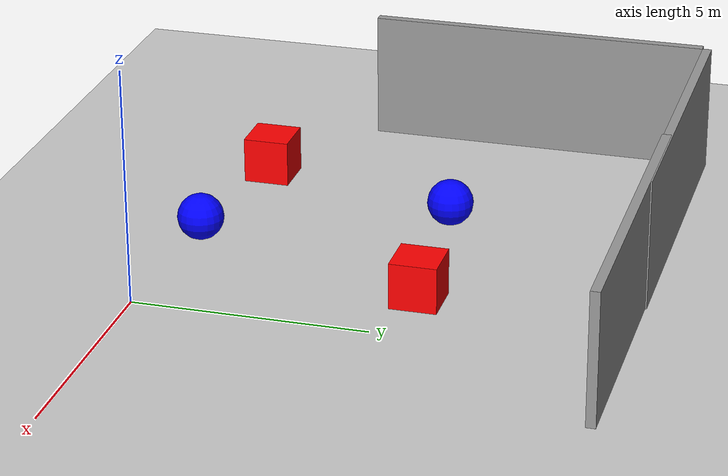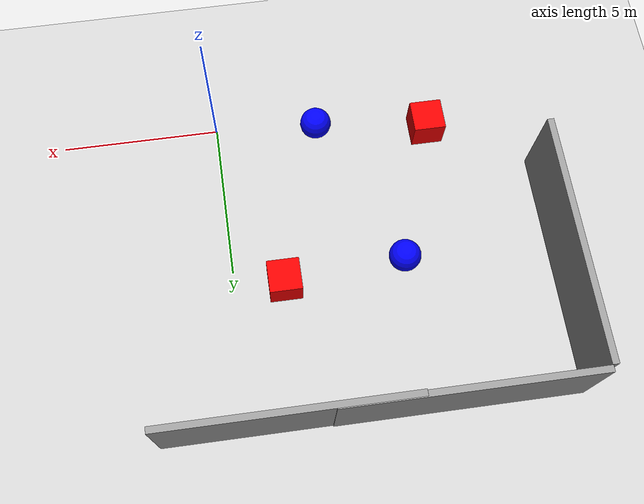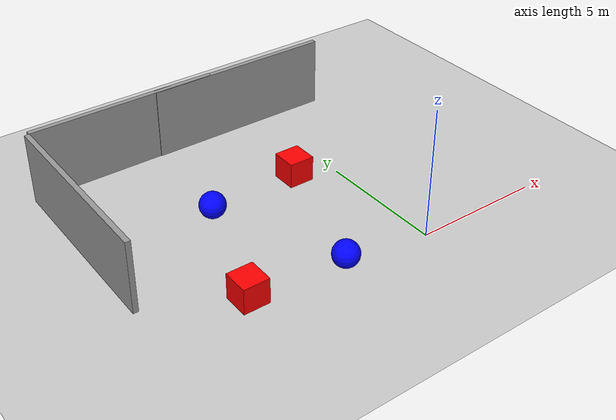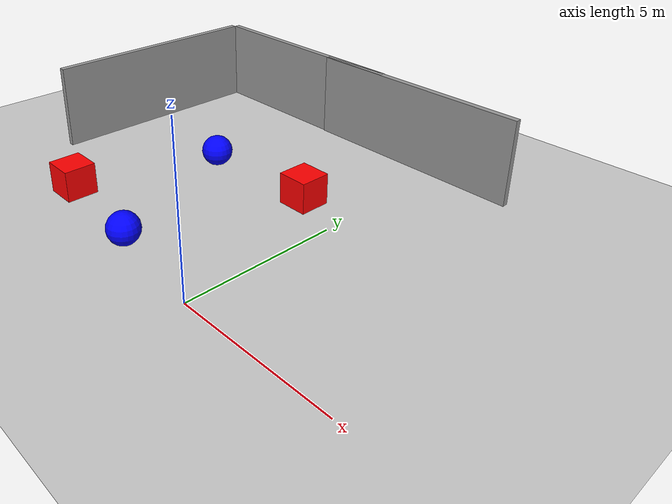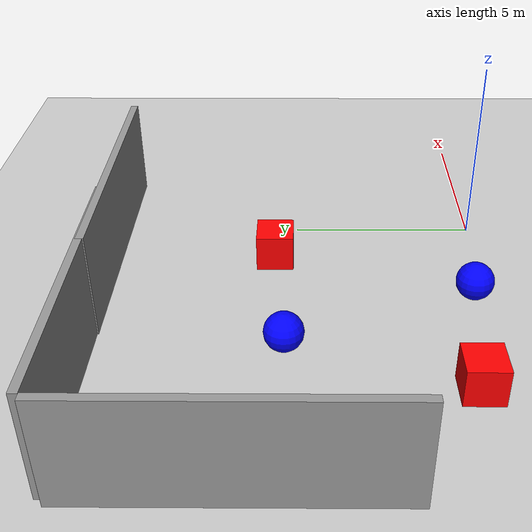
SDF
<sdf version="1.6">
 <world name="default">
  <model name="ground_plane">
   <static>1</static>
   <link name="link">
    <collision name="collision">
     <geometry><plane><normal>0 0 1</normal><size>100 100</size></plane></geometry>
     <surface>
      <contact><collide_bitmask>65535</collide_bitmask></contact>
      <friction><ode><mu>100</mu><mu2>50</mu2></ode></friction>
     </surface>
    </collision>
    <visual name="visual">
     <cast_shadows>0</cast_shadows>
     <geometry><plane><normal>0 0 1</normal><size>100 100</size></plane></geometry>
     <material>
      <script><uri>file://media/materials/scripts/gazebo.material</uri><name>Gazebo/Grey</name></script>
     </material>
    </visual>
   </link>
  </model>
  <model name="grey_wall_0">
   <static>1</static>
   <link name="link">
    <pose>0 0 1.4 0 -0 0</pose>
    <collision name="collision"><geometry><box><size>7.5 0.2 2.8</size></box></geometry></collision>
    <visual name="visual">
     <cast_shadows>0</cast_shadows>
     <geometry><box><size>7.5 0.2 2.8</size></box></geometry>
     <material>
      <script>
       <uri>model://grey_wall/materials/scripts</uri>
       <uri>model://grey_wall/materials/textures</uri>
       <name>vrc/grey_wall</name>
      </script>
     </material>
    </visual>
   </link>
   <pose>-1.10915 9.97646 0 0 -0 0</pose>
  </model>
  <model name="grey_wall_1">
   <static>1</static>
   <link name="link">
    <pose>0 0 1.4 0 -0 0</pose>
    <collision name="collision"><geometry><box><size>7.5 0.2 2.8</size></box></geometry></collision>
    <visual name="visual">
     <cast_shadows>0</cast_shadows>
     <geometry><box><size>7.5 0.2 2.8</size></box></geometry>
     <material>
      <script>
       <uri>model://grey_wall/materials/scripts</uri>
       <uri>model://grey_wall/materials/textures</uri>
       <name>vrc/grey_wall</name>
      </script>
     </material>
    </visual>
   </link>
   <pose>-6.16696 10.0073 0 0 -0 0</pose>
  </model>
  <model name="grey_wall_5_90_rotated_2">
   <link name="link">
    <pose>0 0 1.4 0 -0 0</pose>
    <visual name="visual">
     <cast_shadows>0</cast_shadows>
     <geometry><box><size>7.5 0.2 2.8</size></box></geometry>
     <material>
      <script>
       <uri>model://grey_wall/materials/scripts</uri>
       <uri>model://grey_wall/materials/textures</uri>
       <name>vrc/grey_wall</name>
      </script>
     </material>
    </visual>
    <collision name="collision">
     <geometry><box><size>7.5 0.2 2.8</size></box></geometry>
     <surface>
      <friction>
       <ode><mu>1</mu><mu2>1</mu2><fdir1>0 0 0</fdir1><slip1>0</slip1><slip2>0</slip2></ode>
       <torsional>
        <coefficient>1</coefficient>
        <patch_radius>0</patch_radius>
        <surface_radius>0</surface_radius>
        <use_patch_radius>1</use_patch_radius>
        <ode><slip>0</slip></ode>
       </torsional>
      </friction>
      <bounce><restitution_coefficient>0</restitution_coefficient><threshold>1e+06</threshold></bounce>
      <contact>
       <collide_without_contact>0</collide_without_contact>
       <collide_without_contact_bitmask>1</collide_without_contact_bitmask>
       <collide_bitmask>1</collide_bitmask>
       <ode>
        <soft_cfm>0</soft_cfm>
        <soft_erp>0.2</soft_erp>
        <kp>1e+13</kp>
        <kd>1</kd>
        <max_vel>0.01</max_vel>
        <min_depth>0</min_depth>
       </ode>
       <bullet>
        <split_impulse>1</split_impulse>
        <split_impulse_penetration_threshold>-0.01</split_impulse_penetration_threshold>
        <soft_cfm>0</soft_cfm>
        <soft_erp>0.2</soft_erp>
        <kp>1e+13</kp>
        <kd>1</kd>
       </bullet>
      </contact>
     </surface>
    </collision>
   </link>
   <static>1</static>
   <pose>-10 6.15 0 0 -0 1.57</pose>
  </model>
  <model name="unit_sphere_blue_1">
   <link name="link_2">
    <inertial>
     <mass>1</mass>
     <inertia><ixx>0.1</ixx><ixy>0</ixy><ixz>0</ixz><iyy>0.1</iyy><iyz>0</iyz><izz>0.1</izz></inertia>
    </inertial>
    <pose>-0.012036 0.119402 0 0 -0 0</pose>
    <visual name="visual">
     <geometry><sphere><radius>0.5</radius></sphere></geometry>
     <material>
      <lighting>1</lighting>
      <script><uri>file://media/materials/scripts/gazebo.material</uri><name>Gazebo/Grey</name></script>
      <ambient>0 0 1 0</ambient>
      <shader type="vertex"><normal_map>__default__</normal_map></shader>
      <diffuse>0.7 0.7 0.7 1</diffuse>
      <specular>0.01 0.01 0.01 1</specular>
      <emissive>0 0 0 1</emissive>
     </material>
    </visual>
    <collision name="collision">
     <geometry><sphere><radius>0.5</radius></sphere></geometry>
     <surface>
      <friction>
       <ode><mu>1</mu><mu2>1</mu2><fdir1>0 0 0</fdir1><slip1>0</slip1><slip2>0</slip2></ode>
       <torsional>
        <coefficient>1</coefficient>
        <patch_radius>0</patch_radius>
        <surface_radius>0</surface_radius>
        <use_patch_radius>1</use_patch_radius>
        <ode><slip>0</slip></ode>
       </torsional>
      </friction>
      <bounce><restitution_coefficient>0</restitution_coefficient><threshold>1e+06</threshold></bounce>
      <contact>
       <collide_without_contact>0</collide_without_contact>
       <collide_without_contact_bitmask>1</collide_without_contact_bitmask>
       <collide_bitmask>1</collide_bitmask>
       <ode>
        <soft_cfm>0</soft_cfm>
        <soft_erp>0.2</soft_erp>
        <kp>1e+13</kp>
        <kd>1</kd>
        <max_vel>0.01</max_vel>
        <min_depth>0</min_depth>
       </ode>
       <bullet>
        <split_impulse>1</split_impulse>
        <split_impulse_penetration_threshold>-0.01</split_impulse_penetration_threshold>
        <soft_cfm>0</soft_cfm>
        <soft_erp>0.2</soft_erp>
        <kp>1e+13</kp>
        <kd>1</kd>
       </bullet>
      </contact>
     </surface>
    </collision>
   </link>
   <static>0</static>
   <pose>-5.33856 5.17631 0.5 0 -0 0</pose>
  </model>
  <model name="unit_box_red">
   <link name="link">
    <inertial>
     <mass>1</mass>
     <inertia>
      <ixx>0.166667</ixx>
      <ixy>0</ixy>
      <ixz>0</ixz>
      <iyy>0.166667</iyy>
      <iyz>0</iyz>
      <izz>0.166667</izz>
     </inertia>
    </inertial>
    <visual name="visual">
     <geometry><box><size>1 1 1</size></box></geometry>
     <material>
      <script><name>Gazebo/Grey</name><uri>file://media/materials/scripts/gazebo.material</uri></script>
      <ambient>1 0 0 0</ambient>
      <shader type="vertex"><normal_map>__default__</normal_map></shader>
      <diffuse>0.7 0.7 0.7 1</diffuse>
      <specular>0.01 0.01 0.01 1</specular>
      <emissive>0 0 0 1</emissive>
     </material>
    </visual>
    <collision name="collision">
     <geometry><box><size>1 1 1</size></box></geometry>
     <surface>
      <friction>
       <ode><mu>1</mu><mu2>1</mu2><fdir1>0 0 0</fdir1><slip1>0</slip1><slip2>0</slip2></ode>
       <torsional>
        <coefficient>1</coefficient>
        <patch_radius>0</patch_radius>
        <surface_radius>0</surface_radius>
        <use_patch_radius>1</use_patch_radius>
        <ode><slip>0</slip></ode>
       </torsional>
      </friction>
      <bounce><restitution_coefficient>0</restitution_coefficient><threshold>1e+06</threshold></bounce>
      <contact>
       <collide_without_contact>0</collide_without_contact>
       <collide_without_contact_bitmask>1</collide_without_contact_bitmask>
       <collide_bitmask>1</collide_bitmask>
       <ode>
        <soft_cfm>0</soft_cfm>
        <soft_erp>0.2</soft_erp>
        <kp>1e+13</kp>
        <kd>1</kd>
        <max_vel>0.01</max_vel>
        <min_depth>0</min_depth>
       </ode>
       <bullet>
        <split_impulse>1</split_impulse>
        <split_impulse_penetration_threshold>-0.01</split_impulse_penetration_threshold>
        <soft_cfm>0</soft_cfm>
        <soft_erp>0.2</soft_erp>
        <kp>1e+13</kp>
        <kd>1</kd>
       </bullet>
      </contact>
     </surface>
    </collision>
   </link>
   <static>0</static>
   <pose>-1.5633 5.59561 0.5 0 -0 0</pose>
  </model>
  <model name="unit_box_red_3">
   <link name="link">
    <inertial>
     <mass>1</mass>
     <inertia>
      <ixx>0.166667</ixx>
      <ixy>0</ixy>
      <ixz>0</ixz>
      <iyy>0.166667</iyy>
      <iyz>0</iyz>
      <izz>0.166667</izz>
     </inertia>
    </inertial>
    <visual name="visual">
     <geometry><box><size>1 1 1</size></box></geometry>
     <material>
      <script><name>Gazebo/Grey</name><uri>file://media/materials/scripts/gazebo.material</uri></script>
      <ambient>1 0 0 0</ambient>
      <shader type="vertex"><normal_map>__default__</normal_map></shader>
      <diffuse>0.7 0.7 0.7 1</diffuse>
      <specular>0.01 0.01 0.01 1</specular>
      <emissive>0 0 0 1</emissive>
     </material>
    </visual>
    <collision name="collision">
     <geometry><box><size>1 1 1</size></box></geometry>
     <surface>
      <friction>
       <ode><mu>1</mu><mu2>1</mu2><fdir1>0 0 0</fdir1><slip1>0</slip1><slip2>0</slip2></ode>
       <torsional>
        <coefficient>1</coefficient>
        <patch_radius>0</patch_radius>
        <surface_radius>0</surface_radius>
        <use_patch_radius>1</use_patch_radius>
        <ode><slip>0</slip></ode>
       </torsional>
      </friction>
      <bounce><restitution_coefficient>0</restitution_coefficient><threshold>1e+06</threshold></bounce>
      <contact>
       <collide_without_contact>0</collide_without_contact>
       <collide_without_contact_bitmask>1</collide_without_contact_bitmask>
       <collide_bitmask>1</collide_bitmask>
       <ode>
        <soft_cfm>0</soft_cfm>
        <soft_erp>0.2</soft_erp>
        <kp>1e+13</kp>
        <kd>1</kd>
        <max_vel>0.01</max_vel>
        <min_depth>0</min_depth>
       </ode>
       <bullet>
        <split_impulse>1</split_impulse>
        <split_impulse_penetration_threshold>-0.01</split_impulse_penetration_threshold>
        <soft_cfm>0</soft_cfm>
        <soft_erp>0.2</soft_erp>
        <kp>1e+13</kp>
        <kd>1</kd>
       </bullet>
      </contact>
     </surface>
    </collision>
   </link>
   <static>0</static>
   <pose>-6.83501 0.814119 0.5 0 -0 0</pose>
  </model>
  <model name="unit_sphere_blue_5">
   <link name="link_2">
    <inertial>
     <mass>1</mass>
     <inertia><ixx>0.1</ixx><ixy>0</ixy><ixz>0</ixz><iyy>0.1</iyy><iyz>0</iyz><izz>0.1</izz></inertia>
    </inertial>
    <pose>-0.012036 0.119402 0 0 -0 0</pose>
    <visual name="visual">
     <geometry><sphere><radius>0.5</radius></sphere></geometry>
     <material>
      <lighting>1</lighting>
      <script><uri>file://media/materials/scripts/gazebo.material</uri><name>Gazebo/Grey</name></script>
      <ambient>0 0 1 0</ambient>
      <shader type="vertex"><normal_map>__default__</normal_map></shader>
      <diffuse>0.7 0.7 0.7 1</diffuse>
      <specular>0.01 0.01 0.01 1</specular>
      <emissive>0 0 0 1</emissive>
     </material>
    </visual>
    <collision name="collision">
     <geometry><sphere><radius>0.5</radius></sphere></geometry>
     <surface>
      <friction>
       <ode><mu>1</mu><mu2>1</mu2><fdir1>0 0 0</fdir1><slip1>0</slip1><slip2>0</slip2></ode>
       <torsional>
        <coefficient>1</coefficient>
        <patch_radius>0</patch_radius>
        <surface_radius>0</surface_radius>
        <use_patch_radius>1</use_patch_radius>
        <ode><slip>0</slip></ode>
       </torsional>
      </friction>
      <bounce><restitution_coefficient>0</restitution_coefficient><threshold>1e+06</threshold></bounce>
      <contact>
       <collide_without_contact>0</collide_without_contact>
       <collide_without_contact_bitmask>1</collide_without_contact_bitmask>
       <collide_bitmask>1</collide_bitmask>
       <ode>
        <soft_cfm>0</soft_cfm>
        <soft_erp>0.2</soft_erp>
        <kp>1e+13</kp>
        <kd>1</kd>
        <max_vel>0.01</max_vel>
        <min_depth>0</min_depth>
       </ode>
       <bullet>
        <split_impulse>1</split_impulse>
        <split_impulse_penetration_threshold>-0.01</split_impulse_penetration_threshold>
        <soft_cfm>0</soft_cfm>
        <soft_erp>0.2</soft_erp>
        <kp>1e+13</kp>
        <kd>1</kd>
       </bullet>
      </contact>
     </surface>
    </collision>
   </link>
   <static>0</static>
   <pose>-3.24465 0.244143 0.5 0 -0 0</pose>
  </model>
 </world>
</sdf>
